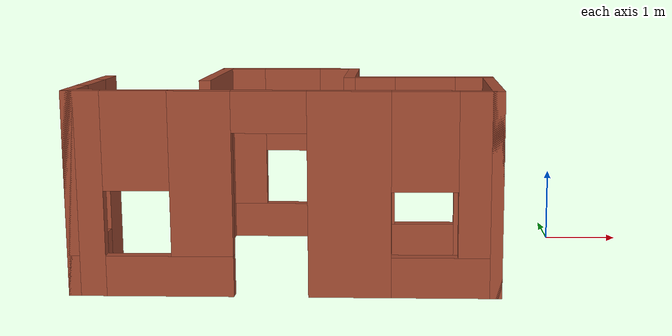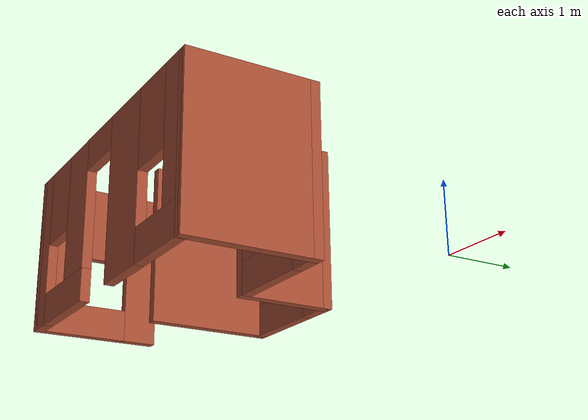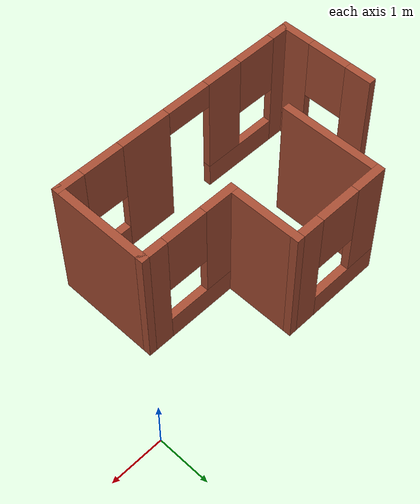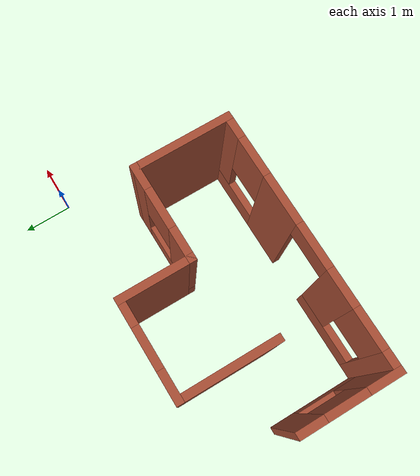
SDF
<?xml version='1.0'?>
<sdf version='1.6'>
  <model name='buil1'>
    <pose frame=''>-3.55 -1.54 0 0 -0 0</pose>
    <link name='Wall_0'>
      <pose frame=''>-2.55 -0.675 0 0 0 -1.5708</pose>
      <visual name='Wall_0_Visual_0'>
        <pose frame=''>-0.7325 0 1.25 0 -0 0</pose>
        <geometry>
          <box>
            <size>0.535 0.15 2.5</size>
          </box>
        </geometry>
        <material>
          <script>
            <uri>file://media/materials/scripts/gazebo.material</uri>
            <name>Gazebo/Bricks</name>
          </script>
          <ambient>0.760784 0.662745 0.627451 1</ambient>
        </material>
      </visual>
      <collision name='Wall_0_Collision_0'>
        <geometry>
          <box>
            <size>0.535 0.15 2.5</size>
          </box>
        </geometry>
        <pose frame=''>-0.7325 0 1.25 0 -0 0</pose>
      </collision>
      <visual name='Wall_0_Visual_1'>
        <pose frame=''>0.2675 0 0.25 0 -0 0</pose>
        <geometry>
          <box>
            <size>1.465 0.15 0.5</size>
          </box>
        </geometry>
        <material>
          <script>
            <uri>file://media/materials/scripts/gazebo.material</uri>
            <name>Gazebo/Bricks</name>
          </script>
          <ambient>0.760784 0.662745 0.627451 1</ambient>
        </material>
      </visual>
      <collision name='Wall_0_Collision_1'>
        <geometry>
          <box>
            <size>1.465 0.15 0.5</size>
          </box>
        </geometry>
        <pose frame=''>0.2675 0 0.25 0 -0 0</pose>
      </collision>
      <visual name='Wall_0_Visual_2'>
        <pose frame=''>0.6675 0 1.5 0 -0 0</pose>
        <geometry>
          <box>
            <size>0.665 0.15 2</size>
          </box>
        </geometry>
        <material>
          <script>
            <uri>file://media/materials/scripts/gazebo.material</uri>
            <name>Gazebo/Bricks</name>
          </script>
          <ambient>0.760784 0.662745 0.627451 1</ambient>
        </material>
      </visual>
      <collision name='Wall_0_Collision_2'>
        <geometry>
          <box>
            <size>0.665 0.15 2</size>
          </box>
        </geometry>
        <pose frame=''>0.6675 0 1.5 0 -0 0</pose>
      </collision>
      <visual name='Wall_0_Visual_3'>
        <pose frame=''>-0.065 0 1.9 0 -0 0</pose>
        <geometry>
          <box>
            <size>0.8 0.15 1.2</size>
          </box>
        </geometry>
        <material>
          <script>
            <uri>file://media/materials/scripts/gazebo.material</uri>
            <name>Gazebo/Bricks</name>
          </script>
          <ambient>0.760784 0.662745 0.627451 1</ambient>
        </material>
      </visual>
      <collision name='Wall_0_Collision_3'>
        <geometry>
          <box>
            <size>0.8 0.15 1.2</size>
          </box>
        </geometry>
        <pose frame=''>-0.065 0 1.9 0 -0 0</pose>
      </collision>
    </link>
    <link name='Wall_1'>
      <pose frame=''>0 -1.6 0 0 -0 0</pose>
      <visual name='Wall_1_Visual_0'>
        <pose frame=''>-2.3925 0 1.25 0 -0 0</pose>
        <geometry>
          <box>
            <size>0.465 0.15 2.5</size>
          </box>
        </geometry>
        <material>
          <script>
            <uri>file://media/materials/scripts/gazebo.material</uri>
            <name>Gazebo/Bricks</name>
          </script>
          <ambient>0.760784 0.662745 0.627451 1</ambient>
        </material>
      </visual>
      <collision name='Wall_1_Collision_0'>
        <geometry>
          <box>
            <size>0.465 0.15 2.5</size>
          </box>
        </geometry>
        <pose frame=''>-2.3925 0 1.25 0 -0 0</pose>
      </collision>
      <visual name='Wall_1_Visual_1'>
        <pose frame=''>0.79 0 1.25 0 -0 0</pose>
        <geometry>
          <box>
            <size>1 0.15 2.5</size>
          </box>
        </geometry>
        <material>
          <script>
            <uri>file://media/materials/scripts/gazebo.material</uri>
            <name>Gazebo/Bricks</name>
          </script>
          <ambient>0.760784 0.662745 0.627451 1</ambient>
        </material>
      </visual>
      <collision name='Wall_1_Collision_1'>
        <geometry>
          <box>
            <size>1 0.15 2.5</size>
          </box>
        </geometry>
        <pose frame=''>0.79 0 1.25 0 -0 0</pose>
      </collision>
      <visual name='Wall_1_Visual_2'>
        <pose frame=''>-1.385 0 0.25 0 -0 0</pose>
        <geometry>
          <box>
            <size>1.55 0.15 0.5</size>
          </box>
        </geometry>
        <material>
          <script>
            <uri>file://media/materials/scripts/gazebo.material</uri>
            <name>Gazebo/Bricks</name>
          </script>
          <ambient>0.760784 0.662745 0.627451 1</ambient>
        </material>
      </visual>
      <collision name='Wall_1_Collision_2'>
        <geometry>
          <box>
            <size>1.55 0.15 0.5</size>
          </box>
        </geometry>
        <pose frame=''>-1.385 0 0.25 0 -0 0</pose>
      </collision>
      <visual name='Wall_1_Visual_3'>
        <pose frame=''>1.9575 0 0.25 0 -0 0</pose>
        <geometry>
          <box>
            <size>1.335 0.15 0.5</size>
          </box>
        </geometry>
        <material>
          <script>
            <uri>file://media/materials/scripts/gazebo.material</uri>
            <name>Gazebo/Bricks</name>
          </script>
          <ambient>0.760784 0.662745 0.627451 1</ambient>
        </material>
      </visual>
      <collision name='Wall_1_Collision_3'>
        <geometry>
          <box>
            <size>1.335 0.15 0.5</size>
          </box>
        </geometry>
        <pose frame=''>1.9575 0 0.25 0 -0 0</pose>
      </collision>
      <visual name='Wall_1_Visual_4'>
        <pose frame=''>-0.985 0 1.5 0 -0 0</pose>
        <geometry>
          <box>
            <size>0.75 0.15 2</size>
          </box>
        </geometry>
        <material>
          <script>
            <uri>file://media/materials/scripts/gazebo.material</uri>
            <name>Gazebo/Bricks</name>
          </script>
          <ambient>0.760784 0.662745 0.627451 1</ambient>
        </material>
      </visual>
      <collision name='Wall_1_Collision_4'>
        <geometry>
          <box>
            <size>0.75 0.15 2</size>
          </box>
        </geometry>
        <pose frame=''>-0.985 0 1.5 0 -0 0</pose>
      </collision>
      <visual name='Wall_1_Visual_5'>
        <pose frame=''>-0.985 0 1.5 0 -0 0</pose>
        <geometry>
          <box>
            <size>0.75 0.15 2</size>
          </box>
        </geometry>
        <material>
          <script>
            <uri>file://media/materials/scripts/gazebo.material</uri>
            <name>Gazebo/Bricks</name>
          </script>
          <ambient>0.760784 0.662745 0.627451 1</ambient>
        </material>
      </visual>
      <collision name='Wall_1_Collision_5'>
        <geometry>
          <box>
            <size>0.75 0.15 2</size>
          </box>
        </geometry>
        <pose frame=''>-0.985 0 1.5 0 -0 0</pose>
      </collision>
      <visual name='Wall_1_Visual_6'>
        <pose frame=''>2.3575 0 1.5 0 -0 0</pose>
        <geometry>
          <box>
            <size>0.535 0.15 2</size>
          </box>
        </geometry>
        <material>
          <script>
            <uri>file://media/materials/scripts/gazebo.material</uri>
            <name>Gazebo/Bricks</name>
          </script>
          <ambient>0.760784 0.662745 0.627451 1</ambient>
        </material>
      </visual>
      <collision name='Wall_1_Collision_6'>
        <geometry>
          <box>
            <size>0.535 0.15 2</size>
          </box>
        </geometry>
        <pose frame=''>2.3575 0 1.5 0 -0 0</pose>
      </collision>
      <visual name='Wall_1_Visual_7'>
        <pose frame=''>-1.76 0 1.9 0 -0 0</pose>
        <geometry>
          <box>
            <size>0.8 0.15 1.2</size>
          </box>
        </geometry>
        <material>
          <script>
            <uri>file://media/materials/scripts/gazebo.material</uri>
            <name>Gazebo/Bricks</name>
          </script>
          <ambient>0.760784 0.662745 0.627451 1</ambient>
        </material>
      </visual>
      <collision name='Wall_1_Collision_7'>
        <geometry>
          <box>
            <size>0.8 0.15 1.2</size>
          </box>
        </geometry>
        <pose frame=''>-1.76 0 1.9 0 -0 0</pose>
      </collision>
      <visual name='Wall_1_Visual_8'>
        <pose frame=''>1.69 0 1.9 0 -0 0</pose>
        <geometry>
          <box>
            <size>0.8 0.15 1.2</size>
          </box>
        </geometry>
        <material>
          <script>
            <uri>file://media/materials/scripts/gazebo.material</uri>
            <name>Gazebo/Bricks</name>
          </script>
          <ambient>0.760784 0.662745 0.627451 1</ambient>
        </material>
      </visual>
      <collision name='Wall_1_Collision_8'>
        <geometry>
          <box>
            <size>0.8 0.15 1.2</size>
          </box>
        </geometry>
        <pose frame=''>1.69 0 1.9 0 -0 0</pose>
      </collision>
      <visual name='Wall_1_Visual_9'>
        <pose frame=''>-0.16 0 2.25 0 -0 0</pose>
        <geometry>
          <box>
            <size>0.9 0.15 0.5</size>
          </box>
        </geometry>
        <material>
          <script>
            <uri>file://media/materials/scripts/gazebo.material</uri>
            <name>Gazebo/Bricks</name>
          </script>
          <ambient>0.760784 0.662745 0.627451 1</ambient>
        </material>
      </visual>
      <collision name='Wall_1_Collision_9'>
        <geometry>
          <box>
            <size>0.9 0.15 0.5</size>
          </box>
        </geometry>
        <pose frame=''>-0.16 0 2.25 0 -0 0</pose>
      </collision>
      <visual name='Wall_1_Visual_10'>
        <pose frame=''>-0.16 0 2.25 0 -0 0</pose>
        <geometry>
          <box>
            <size>0.9 0.15 0.5</size>
          </box>
        </geometry>
        <material>
          <script>
            <uri>file://media/materials/scripts/gazebo.material</uri>
            <name>Gazebo/Bricks</name>
          </script>
          <ambient>0.760784 0.662745 0.627451 1</ambient>
        </material>
      </visual>
      <collision name='Wall_1_Collision_10'>
        <geometry>
          <box>
            <size>0.9 0.15 0.5</size>
          </box>
        </geometry>
        <pose frame=''>-0.16 0 2.25 0 -0 0</pose>
      </collision>
    </link>
    <link name='Wall_2'>
      <collision name='Wall_2_Collision'>
        <geometry>
          <box>
            <size>2 0.15 2.5</size>
          </box>
        </geometry>
        <pose frame=''>0 0 1.25 0 -0 0</pose>
      </collision>
      <visual name='Wall_2_Visual'>
        <pose frame=''>0 0 1.25 0 -0 0</pose>
        <geometry>
          <box>
            <size>2 0.15 2.5</size>
          </box>
        </geometry>
        <material>
          <script>
            <uri>file://media/materials/scripts/gazebo.material</uri>
            <name>Gazebo/Bricks</name>
          </script>
          <ambient>0.760784 0.662745 0.627451 1</ambient>
        </material>
      </visual>
      <pose frame=''>2.55 -0.675 0 0 -0 1.5708</pose>
    </link>
    <link name='Wall_3'>
      <pose frame=''>1.625 0.25 0 0 -0 3.14159</pose>
      <visual name='Wall_3_Visual_0'>
        <pose frame=''>-0.7425 0 1.25 0 -0 0</pose>
        <geometry>
          <box>
            <size>0.515 0.15 2.5</size>
          </box>
        </geometry>
        <material>
          <script>
            <uri>file://media/materials/scripts/gazebo.material</uri>
            <name>Gazebo/Bricks</name>
          </script>
          <ambient>0.760784 0.662745 0.627451 1</ambient>
        </material>
      </visual>
      <collision name='Wall_3_Collision_0'>
        <geometry>
          <box>
            <size>0.515 0.15 2.5</size>
          </box>
        </geometry>
        <pose frame=''>-0.7425 0 1.25 0 -0 0</pose>
      </collision>
      <visual name='Wall_3_Visual_1'>
        <pose frame=''>0.2575 0 0.25 0 -0 0</pose>
        <geometry>
          <box>
            <size>1.485 0.15 0.5</size>
          </box>
        </geometry>
        <material>
          <script>
            <uri>file://media/materials/scripts/gazebo.material</uri>
            <name>Gazebo/Bricks</name>
          </script>
          <ambient>0.760784 0.662745 0.627451 1</ambient>
        </material>
      </visual>
      <collision name='Wall_3_Collision_1'>
        <geometry>
          <box>
            <size>1.485 0.15 0.5</size>
          </box>
        </geometry>
        <pose frame=''>0.2575 0 0.25 0 -0 0</pose>
      </collision>
      <visual name='Wall_3_Visual_2'>
        <pose frame=''>0.6575 0 1.5 0 -0 0</pose>
        <geometry>
          <box>
            <size>0.685 0.15 2</size>
          </box>
        </geometry>
        <material>
          <script>
            <uri>file://media/materials/scripts/gazebo.material</uri>
            <name>Gazebo/Bricks</name>
          </script>
          <ambient>0.760784 0.662745 0.627451 1</ambient>
        </material>
      </visual>
      <collision name='Wall_3_Collision_2'>
        <geometry>
          <box>
            <size>0.685 0.15 2</size>
          </box>
        </geometry>
        <pose frame=''>0.6575 0 1.5 0 -0 0</pose>
      </collision>
      <visual name='Wall_3_Visual_3'>
        <pose frame=''>-0.085 0 1.9 0 -0 0</pose>
        <geometry>
          <box>
            <size>0.8 0.15 1.2</size>
          </box>
        </geometry>
        <material>
          <script>
            <uri>file://media/materials/scripts/gazebo.material</uri>
            <name>Gazebo/Bricks</name>
          </script>
          <ambient>0.760784 0.662745 0.627451 1</ambient>
        </material>
      </visual>
      <collision name='Wall_3_Collision_3'>
        <geometry>
          <box>
            <size>0.8 0.15 1.2</size>
          </box>
        </geometry>
        <pose frame=''>-0.085 0 1.9 0 -0 0</pose>
      </collision>
    </link>
    <link name='Wall_4'>
      <collision name='Wall_4_Collision'>
        <geometry>
          <box>
            <size>1.5 0.15 2.5</size>
          </box>
        </geometry>
        <pose frame=''>0 0 1.25 0 -0 0</pose>
      </collision>
      <visual name='Wall_4_Visual'>
        <pose frame=''>0 0 1.25 0 -0 0</pose>
        <geometry>
          <box>
            <size>1.5 0.15 2.5</size>
          </box>
        </geometry>
        <material>
          <script>
            <uri>file://media/materials/scripts/gazebo.material</uri>
            <name>Gazebo/Bricks</name>
          </script>
          <ambient>0.760784 0.662745 0.627451 1</ambient>
        </material>
      </visual>
      <pose frame=''>0.7 0.925 0 0 -0 1.5708</pose>
    </link>
    <link name='Wall_5'>
      <pose frame=''>-0.225 1.6 0 0 -0 3.14159</pose>
      <visual name='Wall_5_Visual_0'>
        <pose frame=''>-0.7125 0 1.25 0 -0 0</pose>
        <geometry>
          <box>
            <size>0.575 0.15 2.5</size>
          </box>
        </geometry>
        <material>
          <script>
            <uri>file://media/materials/scripts/gazebo.material</uri>
            <name>Gazebo/Bricks</name>
          </script>
          <ambient>0.760784 0.662745 0.627451 1</ambient>
        </material>
      </visual>
      <collision name='Wall_5_Collision_0'>
        <geometry>
          <box>
            <size>0.575 0.15 2.5</size>
          </box>
        </geometry>
        <pose frame=''>-0.7125 0 1.25 0 -0 0</pose>
      </collision>
      <visual name='Wall_5_Visual_1'>
        <pose frame=''>0.2875 0 0.25 0 -0 0</pose>
        <geometry>
          <box>
            <size>1.425 0.15 0.5</size>
          </box>
        </geometry>
        <material>
          <script>
            <uri>file://media/materials/scripts/gazebo.material</uri>
            <name>Gazebo/Bricks</name>
          </script>
          <ambient>0.760784 0.662745 0.627451 1</ambient>
        </material>
      </visual>
      <collision name='Wall_5_Collision_1'>
        <geometry>
          <box>
            <size>1.425 0.15 0.5</size>
          </box>
        </geometry>
        <pose frame=''>0.2875 0 0.25 0 -0 0</pose>
      </collision>
      <visual name='Wall_5_Visual_2'>
        <pose frame=''>0.6875 0 1.5 0 -0 0</pose>
        <geometry>
          <box>
            <size>0.625 0.15 2</size>
          </box>
        </geometry>
        <material>
          <script>
            <uri>file://media/materials/scripts/gazebo.material</uri>
            <name>Gazebo/Bricks</name>
          </script>
          <ambient>0.760784 0.662745 0.627451 1</ambient>
        </material>
      </visual>
      <collision name='Wall_5_Collision_2'>
        <geometry>
          <box>
            <size>0.625 0.15 2</size>
          </box>
        </geometry>
        <pose frame=''>0.6875 0 1.5 0 -0 0</pose>
      </collision>
      <visual name='Wall_5_Visual_3'>
        <pose frame=''>-0.025 0 1.9 0 -0 0</pose>
        <geometry>
          <box>
            <size>0.8 0.15 1.2</size>
          </box>
        </geometry>
        <material>
          <script>
            <uri>file://media/materials/scripts/gazebo.material</uri>
            <name>Gazebo/Bricks</name>
          </script>
          <ambient>0.760784 0.662745 0.627451 1</ambient>
        </material>
      </visual>
      <collision name='Wall_5_Collision_3'>
        <geometry>
          <box>
            <size>0.8 0.15 1.2</size>
          </box>
        </geometry>
        <pose frame=''>-0.025 0 1.9 0 -0 0</pose>
      </collision>
    </link>
    <link name='Wall_6'>
      <collision name='Wall_6_Collision'>
        <geometry>
          <box>
            <size>2 0.15 2.5</size>
          </box>
        </geometry>
        <pose frame=''>0 0 1.25 0 -0 0</pose>
      </collision>
      <visual name='Wall_6_Visual'>
        <pose frame=''>0 0 1.25 0 -0 0</pose>
        <geometry>
          <box>
            <size>2 0.15 2.5</size>
          </box>
        </geometry>
        <material>
          <script>
            <uri>file://media/materials/scripts/gazebo.material</uri>
            <name>Gazebo/Bricks</name>
          </script>
          <ambient>0.760784 0.662745 0.627451 1</ambient>
        </material>
      </visual>
      <pose frame=''>-1.15 0.675 0 0 0 -1.5708</pose>
    </link>
    <static>1</static>
  </model>
</sdf>
